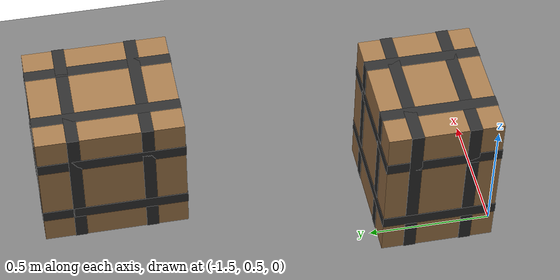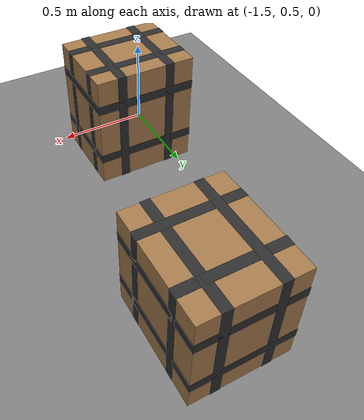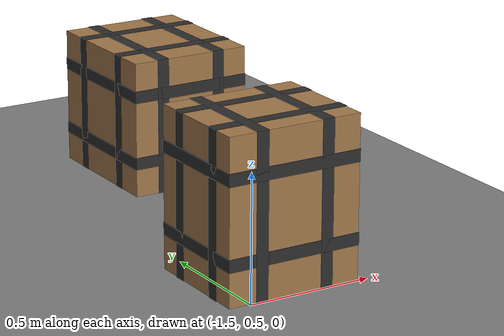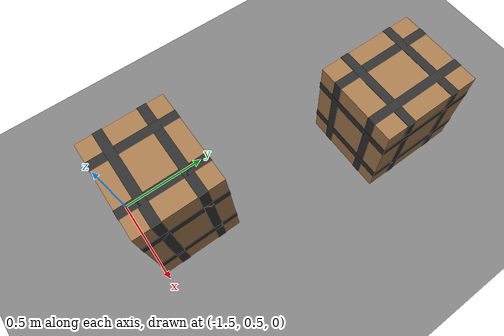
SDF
<sdf version="1.9">
 <world name="ecps295_lowbox_s41_monitor">
  <model name="ground_plane">
   <static>true</static>
   <link name="link">
    <collision name="collision">
     <geometry><plane><normal>0 0 1</normal><size>50 50</size></plane></geometry>
    </collision>
    <visual name="visual">
     <geometry><plane><normal>0 0 1</normal><size>50 50</size></plane></geometry>
     <material><ambient>0.5 0.5 0.5 1</ambient><diffuse>0.5 0.5 0.5 1</diffuse></material>
    </visual>
   </link>
  </model>
  <model name="lb1">
   <static>true</static>
   <pose>-1.31 0.74 0.32 0 0 0</pose>
   <link name="link">
    <collision name="c"><geometry><box><size>0.55 0.46 0.64</size></box></geometry></collision>
    <visual name="v">
     <geometry><box><size>0.55 0.46 0.64</size></box></geometry>
     <material><ambient>0.65 0.48 0.30 1</ambient><diffuse>0.65 0.48 0.30 1</diffuse></material>
    </visual>
    <visual name="tape_ring0">
     <pose>0.000 0.000 -0.160 0 0 0</pose>
     <geometry><box><size>0.554 0.464 0.050</size></box></geometry>
     <material><ambient>0.18 0.18 0.18 1</ambient><diffuse>0.18 0.18 0.18 1</diffuse></material>
    </visual>
    <visual name="tape_bx0">
     <pose>-0.138 0.000 0.000 0 0 0</pose>
     <geometry><box><size>0.050 0.464 0.644</size></box></geometry>
     <material><ambient>0.18 0.18 0.18 1</ambient><diffuse>0.18 0.18 0.18 1</diffuse></material>
    </visual>
    <visual name="tape_by0">
     <pose>0.000 -0.115 0.000 0 0 0</pose>
     <geometry><box><size>0.554 0.050 0.644</size></box></geometry>
     <material><ambient>0.18 0.18 0.18 1</ambient><diffuse>0.18 0.18 0.18 1</diffuse></material>
    </visual>
    <visual name="tape_ring1">
     <pose>0.000 0.000 0.160 0 0 0</pose>
     <geometry><box><size>0.554 0.464 0.050</size></box></geometry>
     <material><ambient>0.18 0.18 0.18 1</ambient><diffuse>0.18 0.18 0.18 1</diffuse></material>
    </visual>
    <visual name="tape_bx1">
     <pose>0.138 0.000 0.000 0 0 0</pose>
     <geometry><box><size>0.050 0.464 0.644</size></box></geometry>
     <material><ambient>0.18 0.18 0.18 1</ambient><diffuse>0.18 0.18 0.18 1</diffuse></material>
    </visual>
    <visual name="tape_by1">
     <pose>0.000 0.115 0.000 0 0 0</pose>
     <geometry><box><size>0.554 0.050 0.644</size></box></geometry>
     <material><ambient>0.18 0.18 0.18 1</ambient><diffuse>0.18 0.18 0.18 1</diffuse></material>
    </visual>
   </link>
  </model>
  <model name="lb2">
   <static>true</static>
   <pose>-1.03 2.01 0.279 0 0 0</pose>
   <link name="link">
    <collision name="c"><geometry><box><size>0.51 0.59 0.56</size></box></geometry></collision>
    <visual name="v">
     <geometry><box><size>0.51 0.59 0.56</size></box></geometry>
     <material><ambient>0.65 0.48 0.30 1</ambient><diffuse>0.65 0.48 0.30 1</diffuse></material>
    </visual>
    <visual name="tape_ring0">
     <pose>0.000 0.000 -0.140 0 0 0</pose>
     <geometry><box><size>0.514 0.594 0.050</size></box></geometry>
     <material><ambient>0.18 0.18 0.18 1</ambient><diffuse>0.18 0.18 0.18 1</diffuse></material>
    </visual>
    <visual name="tape_bx0">
     <pose>-0.128 0.000 0.000 0 0 0</pose>
     <geometry><box><size>0.050 0.594 0.564</size></box></geometry>
     <material><ambient>0.18 0.18 0.18 1</ambient><diffuse>0.18 0.18 0.18 1</diffuse></material>
    </visual>
    <visual name="tape_by0">
     <pose>0.000 -0.147 0.000 0 0 0</pose>
     <geometry><box><size>0.514 0.050 0.564</size></box></geometry>
     <material><ambient>0.18 0.18 0.18 1</ambient><diffuse>0.18 0.18 0.18 1</diffuse></material>
    </visual>
    <visual name="tape_ring1">
     <pose>0.000 0.000 0.140 0 0 0</pose>
     <geometry><box><size>0.514 0.594 0.050</size></box></geometry>
     <material><ambient>0.18 0.18 0.18 1</ambient><diffuse>0.18 0.18 0.18 1</diffuse></material>
    </visual>
    <visual name="tape_bx1">
     <pose>0.128 0.000 0.000 0 0 0</pose>
     <geometry><box><size>0.050 0.594 0.564</size></box></geometry>
     <material><ambient>0.18 0.18 0.18 1</ambient><diffuse>0.18 0.18 0.18 1</diffuse></material>
    </visual>
    <visual name="tape_by1">
     <pose>0.000 0.147 0.000 0 0 0</pose>
     <geometry><box><size>0.514 0.050 0.564</size></box></geometry>
     <material><ambient>0.18 0.18 0.18 1</ambient><diffuse>0.18 0.18 0.18 1</diffuse></material>
    </visual>
   </link>
  </model>
 </world>
</sdf>
